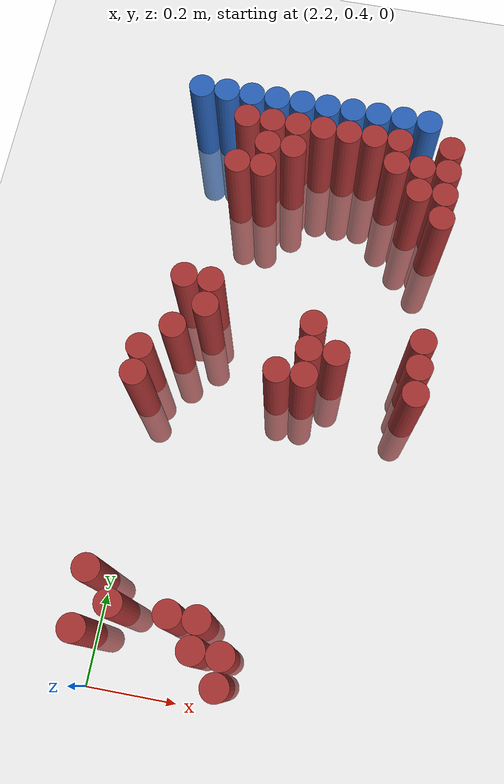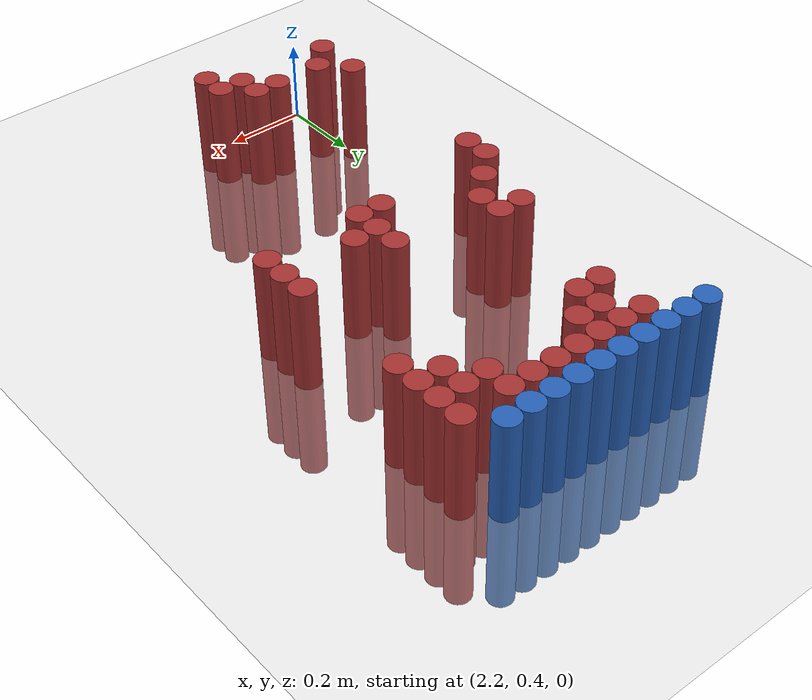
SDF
<sdf version="1.6">
 <world name="default">
  <model name="ground_plane">
   <static>1</static>
   <link name="link">
    <collision name="collision">
     <geometry><plane><normal>0 0 1</normal><size>100 100</size></plane></geometry>
     <surface><friction><ode><mu>100</mu><mu2>50</mu2></ode></friction></surface>
    </collision>
    <visual name="visual">
     <cast_shadows>0</cast_shadows>
     <geometry><plane><normal>0 0 1</normal><size>100 100</size></plane></geometry>
     <material>
      <script><uri>file://media/materials/scripts/gazebo.material</uri><name>Gazebo/Grey</name></script>
     </material>
    </visual>
   </link>
  </model>
  <model name="unit_cylinder_97">
   <static>1</static>
   <pose>2.190000 1.770000 0.000000 0.000000 0.000000 0.000000</pose>
   <link name="link">
    <inertial>
     <mass>1</mass>
     <inertia><ixx>0.145833</ixx><ixy>0</ixy><ixz>0</ixz><iyy>0.145833</iyy><iyz>0</iyz><izz>0.125</izz></inertia>
    </inertial>
    <collision name="collision">
     <geometry><cylinder><radius>0.030000</radius><length>0.5</length></cylinder></geometry>
    </collision>
    <visual name="visual">
     <geometry><cylinder><radius>0.030000</radius><length>0.5</length></cylinder></geometry>
     <material>
      <ambient>0.152000 0.379000 0.720000 1</ambient>
      <diffuse>0.152000 0.379000 0.720000 1</diffuse>
     </material>
     <material>
      <script><name>Gazebo/Grey</name><uri>file://media/materials/scripts/gazebo.material</uri></script>
     </material>
    </visual>
   </link>
  </model>
  <model name="unit_cylinder_98">
   <static>1</static>
   <pose>2.250000 1.770000 0.000000 0.000000 0.000000 0.000000</pose>
   <link name="link">
    <inertial>
     <mass>1</mass>
     <inertia><ixx>0.145833</ixx><ixy>0</ixy><ixz>0</ixz><iyy>0.145833</iyy><iyz>0</iyz><izz>0.125</izz></inertia>
    </inertial>
    <collision name="collision">
     <geometry><cylinder><radius>0.030000</radius><length>0.5</length></cylinder></geometry>
    </collision>
    <visual name="visual">
     <geometry><cylinder><radius>0.030000</radius><length>0.5</length></cylinder></geometry>
     <material>
      <ambient>0.152000 0.379000 0.720000 1</ambient>
      <diffuse>0.152000 0.379000 0.720000 1</diffuse>
     </material>
     <material>
      <script><name>Gazebo/Grey</name><uri>file://media/materials/scripts/gazebo.material</uri></script>
     </material>
    </visual>
   </link>
  </model>
  <model name="unit_cylinder_99">
   <static>1</static>
   <pose>2.310000 1.770000 0.000000 0.000000 0.000000 0.000000</pose>
   <link name="link">
    <inertial>
     <mass>1</mass>
     <inertia><ixx>0.145833</ixx><ixy>0</ixy><ixz>0</ixz><iyy>0.145833</iyy><iyz>0</iyz><izz>0.125</izz></inertia>
    </inertial>
    <collision name="collision">
     <geometry><cylinder><radius>0.030000</radius><length>0.5</length></cylinder></geometry>
    </collision>
    <visual name="visual">
     <geometry><cylinder><radius>0.030000</radius><length>0.5</length></cylinder></geometry>
     <material>
      <ambient>0.152000 0.379000 0.720000 1</ambient>
      <diffuse>0.152000 0.379000 0.720000 1</diffuse>
     </material>
     <material>
      <script><name>Gazebo/Grey</name><uri>file://media/materials/scripts/gazebo.material</uri></script>
     </material>
    </visual>
   </link>
  </model>
  <model name="unit_cylinder_100">
   <static>1</static>
   <pose>2.370000 1.770000 0.000000 0.000000 0.000000 0.000000</pose>
   <link name="link">
    <inertial>
     <mass>1</mass>
     <inertia><ixx>0.145833</ixx><ixy>0</ixy><ixz>0</ixz><iyy>0.145833</iyy><iyz>0</iyz><izz>0.125</izz></inertia>
    </inertial>
    <collision name="collision">
     <geometry><cylinder><radius>0.030000</radius><length>0.5</length></cylinder></geometry>
    </collision>
    <visual name="visual">
     <geometry><cylinder><radius>0.030000</radius><length>0.5</length></cylinder></geometry>
     <material>
      <ambient>0.152000 0.379000 0.720000 1</ambient>
      <diffuse>0.152000 0.379000 0.720000 1</diffuse>
     </material>
     <material>
      <script><name>Gazebo/Grey</name><uri>file://media/materials/scripts/gazebo.material</uri></script>
     </material>
    </visual>
   </link>
  </model>
  <model name="unit_cylinder_101">
   <static>1</static>
   <pose>2.430000 1.770000 0.000000 0.000000 0.000000 0.000000</pose>
   <link name="link">
    <inertial>
     <mass>1</mass>
     <inertia><ixx>0.145833</ixx><ixy>0</ixy><ixz>0</ixz><iyy>0.145833</iyy><iyz>0</iyz><izz>0.125</izz></inertia>
    </inertial>
    <collision name="collision">
     <geometry><cylinder><radius>0.030000</radius><length>0.5</length></cylinder></geometry>
    </collision>
    <visual name="visual">
     <geometry><cylinder><radius>0.030000</radius><length>0.5</length></cylinder></geometry>
     <material>
      <ambient>0.152000 0.379000 0.720000 1</ambient>
      <diffuse>0.152000 0.379000 0.720000 1</diffuse>
     </material>
     <material>
      <script><name>Gazebo/Grey</name><uri>file://media/materials/scripts/gazebo.material</uri></script>
     </material>
    </visual>
   </link>
  </model>
  <model name="unit_cylinder_102">
   <static>1</static>
   <pose>2.490000 1.770000 0.000000 0.000000 0.000000 0.000000</pose>
   <link name="link">
    <inertial>
     <mass>1</mass>
     <inertia><ixx>0.145833</ixx><ixy>0</ixy><ixz>0</ixz><iyy>0.145833</iyy><iyz>0</iyz><izz>0.125</izz></inertia>
    </inertial>
    <collision name="collision">
     <geometry><cylinder><radius>0.030000</radius><length>0.5</length></cylinder></geometry>
    </collision>
    <visual name="visual">
     <geometry><cylinder><radius>0.030000</radius><length>0.5</length></cylinder></geometry>
     <material>
      <ambient>0.152000 0.379000 0.720000 1</ambient>
      <diffuse>0.152000 0.379000 0.720000 1</diffuse>
     </material>
     <material>
      <script><name>Gazebo/Grey</name><uri>file://media/materials/scripts/gazebo.material</uri></script>
     </material>
    </visual>
   </link>
  </model>
  <model name="unit_cylinder_103">
   <static>1</static>
   <pose>2.550000 1.770000 0.000000 0.000000 0.000000 0.000000</pose>
   <link name="link">
    <inertial>
     <mass>1</mass>
     <inertia><ixx>0.145833</ixx><ixy>0</ixy><ixz>0</ixz><iyy>0.145833</iyy><iyz>0</iyz><izz>0.125</izz></inertia>
    </inertial>
    <collision name="collision">
     <geometry><cylinder><radius>0.030000</radius><length>0.5</length></cylinder></geometry>
    </collision>
    <visual name="visual">
     <geometry><cylinder><radius>0.030000</radius><length>0.5</length></cylinder></geometry>
     <material>
      <ambient>0.152000 0.379000 0.720000 1</ambient>
      <diffuse>0.152000 0.379000 0.720000 1</diffuse>
     </material>
     <material>
      <script><name>Gazebo/Grey</name><uri>file://media/materials/scripts/gazebo.material</uri></script>
     </material>
    </visual>
   </link>
  </model>
  <model name="unit_cylinder_104">
   <static>1</static>
   <pose>2.610000 1.770000 0.000000 0.000000 0.000000 0.000000</pose>
   <link name="link">
    <inertial>
     <mass>1</mass>
     <inertia><ixx>0.145833</ixx><ixy>0</ixy><ixz>0</ixz><iyy>0.145833</iyy><iyz>0</iyz><izz>0.125</izz></inertia>
    </inertial>
    <collision name="collision">
     <geometry><cylinder><radius>0.030000</radius><length>0.5</length></cylinder></geometry>
    </collision>
    <visual name="visual">
     <geometry><cylinder><radius>0.030000</radius><length>0.5</length></cylinder></geometry>
     <material>
      <ambient>0.152000 0.379000 0.720000 1</ambient>
      <diffuse>0.152000 0.379000 0.720000 1</diffuse>
     </material>
     <material>
      <script><name>Gazebo/Grey</name><uri>file://media/materials/scripts/gazebo.material</uri></script>
     </material>
    </visual>
   </link>
  </model>
  <model name="unit_cylinder_105">
   <static>1</static>
   <pose>2.670000 1.770000 0.000000 0.000000 0.000000 0.000000</pose>
   <link name="link">
    <inertial>
     <mass>1</mass>
     <inertia><ixx>0.145833</ixx><ixy>0</ixy><ixz>0</ixz><iyy>0.145833</iyy><iyz>0</iyz><izz>0.125</izz></inertia>
    </inertial>
    <collision name="collision">
     <geometry><cylinder><radius>0.030000</radius><length>0.5</length></cylinder></geometry>
    </collision>
    <visual name="visual">
     <geometry><cylinder><radius>0.030000</radius><length>0.5</length></cylinder></geometry>
     <material>
      <ambient>0.152000 0.379000 0.720000 1</ambient>
      <diffuse>0.152000 0.379000 0.720000 1</diffuse>
     </material>
     <material>
      <script><name>Gazebo/Grey</name><uri>file://media/materials/scripts/gazebo.material</uri></script>
     </material>
    </visual>
   </link>
  </model>
  <model name="unit_cylinder_106">
   <static>1</static>
   <pose>2.730000 1.770000 0.000000 0.000000 0.000000 0.000000</pose>
   <link name="link">
    <inertial>
     <mass>1</mass>
     <inertia><ixx>0.145833</ixx><ixy>0</ixy><ixz>0</ixz><iyy>0.145833</iyy><iyz>0</iyz><izz>0.125</izz></inertia>
    </inertial>
    <collision name="collision">
     <geometry><cylinder><radius>0.030000</radius><length>0.5</length></cylinder></geometry>
    </collision>
    <visual name="visual">
     <geometry><cylinder><radius>0.030000</radius><length>0.5</length></cylinder></geometry>
     <material>
      <ambient>0.152000 0.379000 0.720000 1</ambient>
      <diffuse>0.152000 0.379000 0.720000 1</diffuse>
     </material>
     <material>
      <script><name>Gazebo/Grey</name><uri>file://media/materials/scripts/gazebo.material</uri></script>
     </material>
    </visual>
   </link>
  </model>
  <model name="unit_cylinder_125">
   <static>1</static>
   <pose>2.310000 1.710000 0.000000 0.000000 0.000000 0.000000</pose>
   <link name="link">
    <inertial>
     <mass>1</mass>
     <inertia><ixx>0.145833</ixx><ixy>0</ixy><ixz>0</ixz><iyy>0.145833</iyy><iyz>0</iyz><izz>0.125</izz></inertia>
    </inertial>
    <collision name="collision">
     <geometry><cylinder><radius>0.030000</radius><length>0.5</length></cylinder></geometry>
    </collision>
    <visual name="visual">
     <geometry><cylinder><radius>0.030000</radius><length>0.5</length></cylinder></geometry>
     <material>
      <ambient>0.648000 0.192000 0.192000 1</ambient>
      <diffuse>0.648000 0.192000 0.192000 1</diffuse>
     </material>
     <material>
      <script><name>Gazebo/Grey</name><uri>file://media/materials/scripts/gazebo.material</uri></script>
     </material>
    </visual>
   </link>
  </model>
  <model name="unit_cylinder_126">
   <static>1</static>
   <pose>2.370000 1.710000 0.000000 0.000000 0.000000 0.000000</pose>
   <link name="link">
    <inertial>
     <mass>1</mass>
     <inertia><ixx>0.145833</ixx><ixy>0</ixy><ixz>0</ixz><iyy>0.145833</iyy><iyz>0</iyz><izz>0.125</izz></inertia>
    </inertial>
    <collision name="collision">
     <geometry><cylinder><radius>0.030000</radius><length>0.5</length></cylinder></geometry>
    </collision>
    <visual name="visual">
     <geometry><cylinder><radius>0.030000</radius><length>0.5</length></cylinder></geometry>
     <material>
      <ambient>0.648000 0.192000 0.192000 1</ambient>
      <diffuse>0.648000 0.192000 0.192000 1</diffuse>
     </material>
     <material>
      <script><name>Gazebo/Grey</name><uri>file://media/materials/scripts/gazebo.material</uri></script>
     </material>
    </visual>
   </link>
  </model>
  <model name="unit_cylinder_127">
   <static>1</static>
   <pose>2.430000 1.710000 0.000000 0.000000 0.000000 0.000000</pose>
   <link name="link">
    <inertial>
     <mass>1</mass>
     <inertia><ixx>0.145833</ixx><ixy>0</ixy><ixz>0</ixz><iyy>0.145833</iyy><iyz>0</iyz><izz>0.125</izz></inertia>
    </inertial>
    <collision name="collision">
     <geometry><cylinder><radius>0.030000</radius><length>0.5</length></cylinder></geometry>
    </collision>
    <visual name="visual">
     <geometry><cylinder><radius>0.030000</radius><length>0.5</length></cylinder></geometry>
     <material>
      <ambient>0.648000 0.192000 0.192000 1</ambient>
      <diffuse>0.648000 0.192000 0.192000 1</diffuse>
     </material>
     <material>
      <script><name>Gazebo/Grey</name><uri>file://media/materials/scripts/gazebo.material</uri></script>
     </material>
    </visual>
   </link>
  </model>
  <model name="unit_cylinder_128">
   <static>1</static>
   <pose>2.490000 1.710000 0.000000 0.000000 0.000000 0.000000</pose>
   <link name="link">
    <inertial>
     <mass>1</mass>
     <inertia><ixx>0.145833</ixx><ixy>0</ixy><ixz>0</ixz><iyy>0.145833</iyy><iyz>0</iyz><izz>0.125</izz></inertia>
    </inertial>
    <collision name="collision">
     <geometry><cylinder><radius>0.030000</radius><length>0.5</length></cylinder></geometry>
    </collision>
    <visual name="visual">
     <geometry><cylinder><radius>0.030000</radius><length>0.5</length></cylinder></geometry>
     <material>
      <ambient>0.648000 0.192000 0.192000 1</ambient>
      <diffuse>0.648000 0.192000 0.192000 1</diffuse>
     </material>
     <material>
      <script><name>Gazebo/Grey</name><uri>file://media/materials/scripts/gazebo.material</uri></script>
     </material>
    </visual>
   </link>
  </model>
  <model name="unit_cylinder_129">
   <static>1</static>
   <pose>2.550000 1.710000 0.000000 0.000000 0.000000 0.000000</pose>
   <link name="link">
    <inertial>
     <mass>1</mass>
     <inertia><ixx>0.145833</ixx><ixy>0</ixy><ixz>0</ixz><iyy>0.145833</iyy><iyz>0</iyz><izz>0.125</izz></inertia>
    </inertial>
    <collision name="collision">
     <geometry><cylinder><radius>0.030000</radius><length>0.5</length></cylinder></geometry>
    </collision>
    <visual name="visual">
     <geometry><cylinder><radius>0.030000</radius><length>0.5</length></cylinder></geometry>
     <material>
      <ambient>0.648000 0.192000 0.192000 1</ambient>
      <diffuse>0.648000 0.192000 0.192000 1</diffuse>
     </material>
     <material>
      <script><name>Gazebo/Grey</name><uri>file://media/materials/scripts/gazebo.material</uri></script>
     </material>
    </visual>
   </link>
  </model>
  <model name="unit_cylinder_130">
   <static>1</static>
   <pose>2.610000 1.710000 0.000000 0.000000 0.000000 0.000000</pose>
   <link name="link">
    <inertial>
     <mass>1</mass>
     <inertia><ixx>0.145833</ixx><ixy>0</ixy><ixz>0</ixz><iyy>0.145833</iyy><iyz>0</iyz><izz>0.125</izz></inertia>
    </inertial>
    <collision name="collision">
     <geometry><cylinder><radius>0.030000</radius><length>0.5</length></cylinder></geometry>
    </collision>
    <visual name="visual">
     <geometry><cylinder><radius>0.030000</radius><length>0.5</length></cylinder></geometry>
     <material>
      <ambient>0.648000 0.192000 0.192000 1</ambient>
      <diffuse>0.648000 0.192000 0.192000 1</diffuse>
     </material>
     <material>
      <script><name>Gazebo/Grey</name><uri>file://media/materials/scripts/gazebo.material</uri></script>
     </material>
    </visual>
   </link>
  </model>
  <model name="unit_cylinder_131">
   <static>1</static>
   <pose>2.670000 1.710000 0.000000 0.000000 0.000000 0.000000</pose>
   <link name="link">
    <inertial>
     <mass>1</mass>
     <inertia><ixx>0.145833</ixx><ixy>0</ixy><ixz>0</ixz><iyy>0.145833</iyy><iyz>0</iyz><izz>0.125</izz></inertia>
    </inertial>
    <collision name="collision">
     <geometry><cylinder><radius>0.030000</radius><length>0.5</length></cylinder></geometry>
    </collision>
    <visual name="visual">
     <geometry><cylinder><radius>0.030000</radius><length>0.5</length></cylinder></geometry>
     <material>
      <ambient>0.648000 0.192000 0.192000 1</ambient>
      <diffuse>0.648000 0.192000 0.192000 1</diffuse>
     </material>
     <material>
      <script><name>Gazebo/Grey</name><uri>file://media/materials/scripts/gazebo.material</uri></script>
     </material>
    </visual>
   </link>
  </model>
  <model name="unit_cylinder_132">
   <static>1</static>
   <pose>2.790000 1.710000 0.000000 0.000000 0.000000 0.000000</pose>
   <link name="link">
    <inertial>
     <mass>1</mass>
     <inertia><ixx>0.145833</ixx><ixy>0</ixy><ixz>0</ixz><iyy>0.145833</iyy><iyz>0</iyz><izz>0.125</izz></inertia>
    </inertial>
    <collision name="collision">
     <geometry><cylinder><radius>0.030000</radius><length>0.5</length></cylinder></geometry>
    </collision>
    <visual name="visual">
     <geometry><cylinder><radius>0.030000</radius><length>0.5</length></cylinder></geometry>
     <material>
      <ambient>0.648000 0.192000 0.192000 1</ambient>
      <diffuse>0.648000 0.192000 0.192000 1</diffuse>
     </material>
     <material>
      <script><name>Gazebo/Grey</name><uri>file://media/materials/scripts/gazebo.material</uri></script>
     </material>
    </visual>
   </link>
  </model>
  <model name="unit_cylinder_141">
   <static>1</static>
   <pose>2.370000 1.650000 0.000000 0.000000 0.000000 0.000000</pose>
   <link name="link">
    <inertial>
     <mass>1</mass>
     <inertia><ixx>0.145833</ixx><ixy>0</ixy><ixz>0</ixz><iyy>0.145833</iyy><iyz>0</iyz><izz>0.125</izz></inertia>
    </inertial>
    <collision name="collision">
     <geometry><cylinder><radius>0.030000</radius><length>0.5</length></cylinder></geometry>
    </collision>
    <visual name="visual">
     <geometry><cylinder><radius>0.030000</radius><length>0.5</length></cylinder></geometry>
     <material>
      <ambient>0.648000 0.192000 0.192000 1</ambient>
      <diffuse>0.648000 0.192000 0.192000 1</diffuse>
     </material>
     <material>
      <script><name>Gazebo/Grey</name><uri>file://media/materials/scripts/gazebo.material</uri></script>
     </material>
    </visual>
   </link>
  </model>
  <model name="unit_cylinder_142">
   <static>1</static>
   <pose>2.430000 1.650000 0.000000 0.000000 0.000000 0.000000</pose>
   <link name="link">
    <inertial>
     <mass>1</mass>
     <inertia><ixx>0.145833</ixx><ixy>0</ixy><ixz>0</ixz><iyy>0.145833</iyy><iyz>0</iyz><izz>0.125</izz></inertia>
    </inertial>
    <collision name="collision">
     <geometry><cylinder><radius>0.030000</radius><length>0.5</length></cylinder></geometry>
    </collision>
    <visual name="visual">
     <geometry><cylinder><radius>0.030000</radius><length>0.5</length></cylinder></geometry>
     <material>
      <ambient>0.648000 0.192000 0.192000 1</ambient>
      <diffuse>0.648000 0.192000 0.192000 1</diffuse>
     </material>
     <material>
      <script><name>Gazebo/Grey</name><uri>file://media/materials/scripts/gazebo.material</uri></script>
     </material>
    </visual>
   </link>
  </model>
  <model name="unit_cylinder_143">
   <static>1</static>
   <pose>2.670000 1.650000 0.000000 0.000000 0.000000 0.000000</pose>
   <link name="link">
    <inertial>
     <mass>1</mass>
     <inertia><ixx>0.145833</ixx><ixy>0</ixy><ixz>0</ixz><iyy>0.145833</iyy><iyz>0</iyz><izz>0.125</izz></inertia>
    </inertial>
    <collision name="collision">
     <geometry><cylinder><radius>0.030000</radius><length>0.5</length></cylinder></geometry>
    </collision>
    <visual name="visual">
     <geometry><cylinder><radius>0.030000</radius><length>0.5</length></cylinder></geometry>
     <material>
      <ambient>0.648000 0.192000 0.192000 1</ambient>
      <diffuse>0.648000 0.192000 0.192000 1</diffuse>
     </material>
     <material>
      <script><name>Gazebo/Grey</name><uri>file://media/materials/scripts/gazebo.material</uri></script>
     </material>
    </visual>
   </link>
  </model>
  <model name="unit_cylinder_144">
   <static>1</static>
   <pose>2.730000 1.650000 0.000000 0.000000 0.000000 0.000000</pose>
   <link name="link">
    <inertial>
     <mass>1</mass>
     <inertia><ixx>0.145833</ixx><ixy>0</ixy><ixz>0</ixz><iyy>0.145833</iyy><iyz>0</iyz><izz>0.125</izz></inertia>
    </inertial>
    <collision name="collision">
     <geometry><cylinder><radius>0.030000</radius><length>0.5</length></cylinder></geometry>
    </collision>
    <visual name="visual">
     <geometry><cylinder><radius>0.030000</radius><length>0.5</length></cylinder></geometry>
     <material>
      <ambient>0.648000 0.192000 0.192000 1</ambient>
      <diffuse>0.648000 0.192000 0.192000 1</diffuse>
     </material>
     <material>
      <script><name>Gazebo/Grey</name><uri>file://media/materials/scripts/gazebo.material</uri></script>
     </material>
    </visual>
   </link>
  </model>
  <model name="unit_cylinder_145">
   <static>1</static>
   <pose>2.790000 1.650000 0.000000 0.000000 0.000000 0.000000</pose>
   <link name="link">
    <inertial>
     <mass>1</mass>
     <inertia><ixx>0.145833</ixx><ixy>0</ixy><ixz>0</ixz><iyy>0.145833</iyy><iyz>0</iyz><izz>0.125</izz></inertia>
    </inertial>
    <collision name="collision">
     <geometry><cylinder><radius>0.030000</radius><length>0.5</length></cylinder></geometry>
    </collision>
    <visual name="visual">
     <geometry><cylinder><radius>0.030000</radius><length>0.5</length></cylinder></geometry>
     <material>
      <ambient>0.648000 0.192000 0.192000 1</ambient>
      <diffuse>0.648000 0.192000 0.192000 1</diffuse>
     </material>
     <material>
      <script><name>Gazebo/Grey</name><uri>file://media/materials/scripts/gazebo.material</uri></script>
     </material>
    </visual>
   </link>
  </model>
  <model name="unit_cylinder_149">
   <static>1</static>
   <pose>2.310000 1.590000 0.000000 0.000000 0.000000 0.000000</pose>
   <link name="link">
    <inertial>
     <mass>1</mass>
     <inertia><ixx>0.145833</ixx><ixy>0</ixy><ixz>0</ixz><iyy>0.145833</iyy><iyz>0</iyz><izz>0.125</izz></inertia>
    </inertial>
    <collision name="collision">
     <geometry><cylinder><radius>0.030000</radius><length>0.5</length></cylinder></geometry>
    </collision>
    <visual name="visual">
     <geometry><cylinder><radius>0.030000</radius><length>0.5</length></cylinder></geometry>
     <material>
      <ambient>0.648000 0.192000 0.192000 1</ambient>
      <diffuse>0.648000 0.192000 0.192000 1</diffuse>
     </material>
     <material>
      <script><name>Gazebo/Grey</name><uri>file://media/materials/scripts/gazebo.material</uri></script>
     </material>
    </visual>
   </link>
  </model>
  <model name="unit_cylinder_150">
   <static>1</static>
   <pose>2.370000 1.590000 0.000000 0.000000 0.000000 0.000000</pose>
   <link name="link">
    <inertial>
     <mass>1</mass>
     <inertia><ixx>0.145833</ixx><ixy>0</ixy><ixz>0</ixz><iyy>0.145833</iyy><iyz>0</iyz><izz>0.125</izz></inertia>
    </inertial>
    <collision name="collision">
     <geometry><cylinder><radius>0.030000</radius><length>0.5</length></cylinder></geometry>
    </collision>
    <visual name="visual">
     <geometry><cylinder><radius>0.030000</radius><length>0.5</length></cylinder></geometry>
     <material>
      <ambient>0.648000 0.192000 0.192000 1</ambient>
      <diffuse>0.648000 0.192000 0.192000 1</diffuse>
     </material>
     <material>
      <script><name>Gazebo/Grey</name><uri>file://media/materials/scripts/gazebo.material</uri></script>
     </material>
    </visual>
   </link>
  </model>
  <model name="unit_cylinder_151">
   <static>1</static>
   <pose>2.730000 1.590000 0.000000 0.000000 0.000000 0.000000</pose>
   <link name="link">
    <inertial>
     <mass>1</mass>
     <inertia><ixx>0.145833</ixx><ixy>0</ixy><ixz>0</ixz><iyy>0.145833</iyy><iyz>0</iyz><izz>0.125</izz></inertia>
    </inertial>
    <collision name="collision">
     <geometry><cylinder><radius>0.030000</radius><length>0.5</length></cylinder></geometry>
    </collision>
    <visual name="visual">
     <geometry><cylinder><radius>0.030000</radius><length>0.5</length></cylinder></geometry>
     <material>
      <ambient>0.648000 0.192000 0.192000 1</ambient>
      <diffuse>0.648000 0.192000 0.192000 1</diffuse>
     </material>
     <material>
      <script><name>Gazebo/Grey</name><uri>file://media/materials/scripts/gazebo.material</uri></script>
     </material>
    </visual>
   </link>
  </model>
  <model name="unit_cylinder_152">
   <static>1</static>
   <pose>2.790000 1.590000 0.000000 0.000000 0.000000 0.000000</pose>
   <link name="link">
    <inertial>
     <mass>1</mass>
     <inertia><ixx>0.145833</ixx><ixy>0</ixy><ixz>0</ixz><iyy>0.145833</iyy><iyz>0</iyz><izz>0.125</izz></inertia>
    </inertial>
    <collision name="collision">
     <geometry><cylinder><radius>0.030000</radius><length>0.5</length></cylinder></geometry>
    </collision>
    <visual name="visual">
     <geometry><cylinder><radius>0.030000</radius><length>0.5</length></cylinder></geometry>
     <material>
      <ambient>0.648000 0.192000 0.192000 1</ambient>
      <diffuse>0.648000 0.192000 0.192000 1</diffuse>
     </material>
     <material>
      <script><name>Gazebo/Grey</name><uri>file://media/materials/scripts/gazebo.material</uri></script>
     </material>
    </visual>
   </link>
  </model>
  <model name="unit_cylinder_157">
   <static>1</static>
   <pose>2.790000 1.530000 0.000000 0.000000 0.000000 0.000000</pose>
   <link name="link">
    <inertial>
     <mass>1</mass>
     <inertia><ixx>0.145833</ixx><ixy>0</ixy><ixz>0</ixz><iyy>0.145833</iyy><iyz>0</iyz><izz>0.125</izz></inertia>
    </inertial>
    <collision name="collision">
     <geometry><cylinder><radius>0.030000</radius><length>0.5</length></cylinder></geometry>
    </collision>
    <visual name="visual">
     <geometry><cylinder><radius>0.030000</radius><length>0.5</length></cylinder></geometry>
     <material>
      <ambient>0.648000 0.192000 0.192000 1</ambient>
      <diffuse>0.648000 0.192000 0.192000 1</diffuse>
     </material>
     <material>
      <script><name>Gazebo/Grey</name><uri>file://media/materials/scripts/gazebo.material</uri></script>
     </material>
    </visual>
   </link>
  </model>
  <model name="unit_cylinder_161">
   <static>1</static>
   <pose>2.250000 1.290000 0.000000 0.000000 0.000000 0.000000</pose>
   <link name="link">
    <inertial>
     <mass>1</mass>
     <inertia><ixx>0.145833</ixx><ixy>0</ixy><ixz>0</ixz><iyy>0.145833</iyy><iyz>0</iyz><izz>0.125</izz></inertia>
    </inertial>
    <collision name="collision">
     <geometry><cylinder><radius>0.030000</radius><length>0.5</length></cylinder></geometry>
    </collision>
    <visual name="visual">
     <geometry><cylinder><radius>0.030000</radius><length>0.5</length></cylinder></geometry>
     <material>
      <ambient>0.648000 0.192000 0.192000 1</ambient>
      <diffuse>0.648000 0.192000 0.192000 1</diffuse>
     </material>
     <material>
      <script><name>Gazebo/Grey</name><uri>file://media/materials/scripts/gazebo.material</uri></script>
     </material>
    </visual>
   </link>
  </model>
  <model name="unit_cylinder_162">
   <static>1</static>
   <pose>2.310000 1.290000 0.000000 0.000000 0.000000 0.000000</pose>
   <link name="link">
    <inertial>
     <mass>1</mass>
     <inertia><ixx>0.145833</ixx><ixy>0</ixy><ixz>0</ixz><iyy>0.145833</iyy><iyz>0</iyz><izz>0.125</izz></inertia>
    </inertial>
    <collision name="collision">
     <geometry><cylinder><radius>0.030000</radius><length>0.5</length></cylinder></geometry>
    </collision>
    <visual name="visual">
     <geometry><cylinder><radius>0.030000</radius><length>0.5</length></cylinder></geometry>
     <material>
      <ambient>0.648000 0.192000 0.192000 1</ambient>
      <diffuse>0.648000 0.192000 0.192000 1</diffuse>
     </material>
     <material>
      <script><name>Gazebo/Grey</name><uri>file://media/materials/scripts/gazebo.material</uri></script>
     </material>
    </visual>
   </link>
  </model>
  <model name="unit_cylinder_167">
   <static>1</static>
   <pose>2.310000 1.230000 0.000000 0.000000 0.000000 0.000000</pose>
   <link name="link">
    <inertial>
     <mass>1</mass>
     <inertia><ixx>0.145833</ixx><ixy>0</ixy><ixz>0</ixz><iyy>0.145833</iyy><iyz>0</iyz><izz>0.125</izz></inertia>
    </inertial>
    <collision name="collision">
     <geometry><cylinder><radius>0.030000</radius><length>0.5</length></cylinder></geometry>
    </collision>
    <visual name="visual">
     <geometry><cylinder><radius>0.030000</radius><length>0.5</length></cylinder></geometry>
     <material>
      <ambient>0.648000 0.192000 0.192000 1</ambient>
      <diffuse>0.648000 0.192000 0.192000 1</diffuse>
     </material>
     <material>
      <script><name>Gazebo/Grey</name><uri>file://media/materials/scripts/gazebo.material</uri></script>
     </material>
    </visual>
   </link>
  </model>
  <model name="unit_cylinder_168">
   <static>1</static>
   <pose>2.550000 1.230000 0.000000 0.000000 0.000000 0.000000</pose>
   <link name="link">
    <inertial>
     <mass>1</mass>
     <inertia><ixx>0.145833</ixx><ixy>0</ixy><ixz>0</ixz><iyy>0.145833</iyy><iyz>0</iyz><izz>0.125</izz></inertia>
    </inertial>
    <collision name="collision">
     <geometry><cylinder><radius>0.030000</radius><length>0.5</length></cylinder></geometry>
    </collision>
    <visual name="visual">
     <geometry><cylinder><radius>0.030000</radius><length>0.5</length></cylinder></geometry>
     <material>
      <ambient>0.648000 0.192000 0.192000 1</ambient>
      <diffuse>0.648000 0.192000 0.192000 1</diffuse>
     </material>
     <material>
      <script><name>Gazebo/Grey</name><uri>file://media/materials/scripts/gazebo.material</uri></script>
     </material>
    </visual>
   </link>
  </model>
  <model name="unit_cylinder_169">
   <static>1</static>
   <pose>2.790000 1.230000 0.000000 0.000000 0.000000 0.000000</pose>
   <link name="link">
    <inertial>
     <mass>1</mass>
     <inertia><ixx>0.145833</ixx><ixy>0</ixy><ixz>0</ixz><iyy>0.145833</iyy><iyz>0</iyz><izz>0.125</izz></inertia>
    </inertial>
    <collision name="collision">
     <geometry><cylinder><radius>0.030000</radius><length>0.5</length></cylinder></geometry>
    </collision>
    <visual name="visual">
     <geometry><cylinder><radius>0.030000</radius><length>0.5</length></cylinder></geometry>
     <material>
      <ambient>0.648000 0.192000 0.192000 1</ambient>
      <diffuse>0.648000 0.192000 0.192000 1</diffuse>
     </material>
     <material>
      <script><name>Gazebo/Grey</name><uri>file://media/materials/scripts/gazebo.material</uri></script>
     </material>
    </visual>
   </link>
  </model>
  <model name="unit_cylinder_173">
   <static>1</static>
   <pose>2.250000 1.170000 0.000000 0.000000 0.000000 0.000000</pose>
   <link name="link">
    <inertial>
     <mass>1</mass>
     <inertia><ixx>0.145833</ixx><ixy>0</ixy><ixz>0</ixz><iyy>0.145833</iyy><iyz>0</iyz><izz>0.125</izz></inertia>
    </inertial>
    <collision name="collision">
     <geometry><cylinder><radius>0.030000</radius><length>0.5</length></cylinder></geometry>
    </collision>
    <visual name="visual">
     <geometry><cylinder><radius>0.030000</radius><length>0.5</length></cylinder></geometry>
     <material>
      <ambient>0.648000 0.192000 0.192000 1</ambient>
      <diffuse>0.648000 0.192000 0.192000 1</diffuse>
     </material>
     <material>
      <script><name>Gazebo/Grey</name><uri>file://media/materials/scripts/gazebo.material</uri></script>
     </material>
    </visual>
   </link>
  </model>
  <model name="unit_cylinder_174">
   <static>1</static>
   <pose>2.550000 1.170000 0.000000 0.000000 0.000000 0.000000</pose>
   <link name="link">
    <inertial>
     <mass>1</mass>
     <inertia><ixx>0.145833</ixx><ixy>0</ixy><ixz>0</ixz><iyy>0.145833</iyy><iyz>0</iyz><izz>0.125</izz></inertia>
    </inertial>
    <collision name="collision">
     <geometry><cylinder><radius>0.030000</radius><length>0.5</length></cylinder></geometry>
    </collision>
    <visual name="visual">
     <geometry><cylinder><radius>0.030000</radius><length>0.5</length></cylinder></geometry>
     <material>
      <ambient>0.648000 0.192000 0.192000 1</ambient>
      <diffuse>0.648000 0.192000 0.192000 1</diffuse>
     </material>
     <material>
      <script><name>Gazebo/Grey</name><uri>file://media/materials/scripts/gazebo.material</uri></script>
     </material>
    </visual>
   </link>
  </model>
  <model name="unit_cylinder_175">
   <static>1</static>
   <pose>2.610000 1.170000 0.000000 0.000000 0.000000 0.000000</pose>
   <link name="link">
    <inertial>
     <mass>1</mass>
     <inertia><ixx>0.145833</ixx><ixy>0</ixy><ixz>0</ixz><iyy>0.145833</iyy><iyz>0</iyz><izz>0.125</izz></inertia>
    </inertial>
    <collision name="collision">
     <geometry><cylinder><radius>0.030000</radius><length>0.5</length></cylinder></geometry>
    </collision>
    <visual name="visual">
     <geometry><cylinder><radius>0.030000</radius><length>0.5</length></cylinder></geometry>
     <material>
      <ambient>0.648000 0.192000 0.192000 1</ambient>
      <diffuse>0.648000 0.192000 0.192000 1</diffuse>
     </material>
     <material>
      <script><name>Gazebo/Grey</name><uri>file://media/materials/scripts/gazebo.material</uri></script>
     </material>
    </visual>
   </link>
  </model>
  <model name="unit_cylinder_176">
   <static>1</static>
   <pose>2.790000 1.170000 0.000000 0.000000 0.000000 0.000000</pose>
   <link name="link">
    <inertial>
     <mass>1</mass>
     <inertia><ixx>0.145833</ixx><ixy>0</ixy><ixz>0</ixz><iyy>0.145833</iyy><iyz>0</iyz><izz>0.125</izz></inertia>
    </inertial>
    <collision name="collision">
     <geometry><cylinder><radius>0.030000</radius><length>0.5</length></cylinder></geometry>
    </collision>
    <visual name="visual">
     <geometry><cylinder><radius>0.030000</radius><length>0.5</length></cylinder></geometry>
     <material>
      <ambient>0.648000 0.192000 0.192000 1</ambient>
      <diffuse>0.648000 0.192000 0.192000 1</diffuse>
     </material>
     <material>
      <script><name>Gazebo/Grey</name><uri>file://media/materials/scripts/gazebo.material</uri></script>
     </material>
    </visual>
   </link>
  </model>
  <model name="unit_cylinder_179">
   <static>1</static>
   <pose>2.190000 1.110000 0.000000 0.000000 0.000000 0.000000</pose>
   <link name="link">
    <inertial>
     <mass>1</mass>
     <inertia><ixx>0.145833</ixx><ixy>0</ixy><ixz>0</ixz><iyy>0.145833</iyy><iyz>0</iyz><izz>0.125</izz></inertia>
    </inertial>
    <collision name="collision">
     <geometry><cylinder><radius>0.030000</radius><length>0.5</length></cylinder></geometry>
    </collision>
    <visual name="visual">
     <geometry><cylinder><radius>0.030000</radius><length>0.5</length></cylinder></geometry>
     <material>
      <ambient>0.648000 0.192000 0.192000 1</ambient>
      <diffuse>0.648000 0.192000 0.192000 1</diffuse>
     </material>
     <material>
      <script><name>Gazebo/Grey</name><uri>file://media/materials/scripts/gazebo.material</uri></script>
     </material>
    </visual>
   </link>
  </model>
  <model name="unit_cylinder_180">
   <static>1</static>
   <pose>2.490000 1.110000 0.000000 0.000000 0.000000 0.000000</pose>
   <link name="link">
    <inertial>
     <mass>1</mass>
     <inertia><ixx>0.145833</ixx><ixy>0</ixy><ixz>0</ixz><iyy>0.145833</iyy><iyz>0</iyz><izz>0.125</izz></inertia>
    </inertial>
    <collision name="collision">
     <geometry><cylinder><radius>0.030000</radius><length>0.5</length></cylinder></geometry>
    </collision>
    <visual name="visual">
     <geometry><cylinder><radius>0.030000</radius><length>0.5</length></cylinder></geometry>
     <material>
      <ambient>0.648000 0.192000 0.192000 1</ambient>
      <diffuse>0.648000 0.192000 0.192000 1</diffuse>
     </material>
     <material>
      <script><name>Gazebo/Grey</name><uri>file://media/materials/scripts/gazebo.material</uri></script>
     </material>
    </visual>
   </link>
  </model>
  <model name="unit_cylinder_181">
   <static>1</static>
   <pose>2.550000 1.110000 0.000000 0.000000 0.000000 0.000000</pose>
   <link name="link">
    <inertial>
     <mass>1</mass>
     <inertia><ixx>0.145833</ixx><ixy>0</ixy><ixz>0</ixz><iyy>0.145833</iyy><iyz>0</iyz><izz>0.125</izz></inertia>
    </inertial>
    <collision name="collision">
     <geometry><cylinder><radius>0.030000</radius><length>0.5</length></cylinder></geometry>
    </collision>
    <visual name="visual">
     <geometry><cylinder><radius>0.030000</radius><length>0.5</length></cylinder></geometry>
     <material>
      <ambient>0.648000 0.192000 0.192000 1</ambient>
      <diffuse>0.648000 0.192000 0.192000 1</diffuse>
     </material>
     <material>
      <script><name>Gazebo/Grey</name><uri>file://media/materials/scripts/gazebo.material</uri></script>
     </material>
    </visual>
   </link>
  </model>
  <model name="unit_cylinder_182">
   <static>1</static>
   <pose>2.790000 1.110000 0.000000 0.000000 0.000000 0.000000</pose>
   <link name="link">
    <inertial>
     <mass>1</mass>
     <inertia><ixx>0.145833</ixx><ixy>0</ixy><ixz>0</ixz><iyy>0.145833</iyy><iyz>0</iyz><izz>0.125</izz></inertia>
    </inertial>
    <collision name="collision">
     <geometry><cylinder><radius>0.030000</radius><length>0.5</length></cylinder></geometry>
    </collision>
    <visual name="visual">
     <geometry><cylinder><radius>0.030000</radius><length>0.5</length></cylinder></geometry>
     <material>
      <ambient>0.648000 0.192000 0.192000 1</ambient>
      <diffuse>0.648000 0.192000 0.192000 1</diffuse>
     </material>
     <material>
      <script><name>Gazebo/Grey</name><uri>file://media/materials/scripts/gazebo.material</uri></script>
     </material>
    </visual>
   </link>
  </model>
  <model name="unit_cylinder_187">
   <static>1</static>
   <pose>2.190000 1.050000 0.000000 0.000000 0.000000 0.000000</pose>
   <link name="link">
    <inertial>
     <mass>1</mass>
     <inertia><ixx>0.145833</ixx><ixy>0</ixy><ixz>0</ixz><iyy>0.145833</iyy><iyz>0</iyz><izz>0.125</izz></inertia>
    </inertial>
    <collision name="collision">
     <geometry><cylinder><radius>0.030000</radius><length>0.5</length></cylinder></geometry>
    </collision>
    <visual name="visual">
     <geometry><cylinder><radius>0.030000</radius><length>0.5</length></cylinder></geometry>
     <material>
      <ambient>0.648000 0.192000 0.192000 1</ambient>
      <diffuse>0.648000 0.192000 0.192000 1</diffuse>
     </material>
     <material>
      <script><name>Gazebo/Grey</name><uri>file://media/materials/scripts/gazebo.material</uri></script>
     </material>
    </visual>
   </link>
  </model>
  <model name="unit_cylinder_191">
   <static>1</static>
   <pose>2.190000 0.630000 0.000000 0.000000 0.000000 0.000000</pose>
   <link name="link">
    <inertial>
     <mass>1</mass>
     <inertia><ixx>0.145833</ixx><ixy>0</ixy><ixz>0</ixz><iyy>0.145833</iyy><iyz>0</iyz><izz>0.125</izz></inertia>
    </inertial>
    <collision name="collision">
     <geometry><cylinder><radius>0.030000</radius><length>0.5</length></cylinder></geometry>
    </collision>
    <visual name="visual">
     <geometry><cylinder><radius>0.030000</radius><length>0.5</length></cylinder></geometry>
     <material>
      <ambient>0.648000 0.192000 0.192000 1</ambient>
      <diffuse>0.648000 0.192000 0.192000 1</diffuse>
     </material>
     <material>
      <script><name>Gazebo/Grey</name><uri>file://media/materials/scripts/gazebo.material</uri></script>
     </material>
    </visual>
   </link>
  </model>
  <model name="unit_cylinder_193">
   <static>1</static>
   <pose>2.250000 0.570000 0.000000 0.000000 0.000000 0.000000</pose>
   <link name="link">
    <inertial>
     <mass>1</mass>
     <inertia><ixx>0.145833</ixx><ixy>0</ixy><ixz>0</ixz><iyy>0.145833</iyy><iyz>0</iyz><izz>0.125</izz></inertia>
    </inertial>
    <collision name="collision">
     <geometry><cylinder><radius>0.030000</radius><length>0.5</length></cylinder></geometry>
    </collision>
    <visual name="visual">
     <geometry><cylinder><radius>0.030000</radius><length>0.5</length></cylinder></geometry>
     <material>
      <ambient>0.648000 0.192000 0.192000 1</ambient>
      <diffuse>0.648000 0.192000 0.192000 1</diffuse>
     </material>
     <material>
      <script><name>Gazebo/Grey</name><uri>file://media/materials/scripts/gazebo.material</uri></script>
     </material>
    </visual>
   </link>
  </model>
  <model name="unit_cylinder_194">
   <static>1</static>
   <pose>2.370000 0.570000 0.000000 0.000000 0.000000 0.000000</pose>
   <link name="link">
    <inertial>
     <mass>1</mass>
     <inertia><ixx>0.145833</ixx><ixy>0</ixy><ixz>0</ixz><iyy>0.145833</iyy><iyz>0</iyz><izz>0.125</izz></inertia>
    </inertial>
    <collision name="collision">
     <geometry><cylinder><radius>0.030000</radius><length>0.5</length></cylinder></geometry>
    </collision>
    <visual name="visual">
     <geometry><cylinder><radius>0.030000</radius><length>0.5</length></cylinder></geometry>
     <material>
      <ambient>0.648000 0.192000 0.192000 1</ambient>
      <diffuse>0.648000 0.192000 0.192000 1</diffuse>
     </material>
     <material>
      <script><name>Gazebo/Grey</name><uri>file://media/materials/scripts/gazebo.material</uri></script>
     </material>
    </visual>
   </link>
  </model>
  <model name="unit_cylinder_195">
   <static>1</static>
   <pose>2.430000 0.570000 0.000000 0.000000 0.000000 0.000000</pose>
   <link name="link">
    <inertial>
     <mass>1</mass>
     <inertia><ixx>0.145833</ixx><ixy>0</ixy><ixz>0</ixz><iyy>0.145833</iyy><iyz>0</iyz><izz>0.125</izz></inertia>
    </inertial>
    <collision name="collision">
     <geometry><cylinder><radius>0.030000</radius><length>0.5</length></cylinder></geometry>
    </collision>
    <visual name="visual">
     <geometry><cylinder><radius>0.030000</radius><length>0.5</length></cylinder></geometry>
     <material>
      <ambient>0.648000 0.192000 0.192000 1</ambient>
      <diffuse>0.648000 0.192000 0.192000 1</diffuse>
     </material>
     <material>
      <script><name>Gazebo/Grey</name><uri>file://media/materials/scripts/gazebo.material</uri></script>
     </material>
    </visual>
   </link>
  </model>
  <model name="unit_cylinder_196">
   <static>1</static>
   <pose>2.190000 0.510000 0.000000 0.000000 0.000000 0.000000</pose>
   <link name="link">
    <inertial>
     <mass>1</mass>
     <inertia><ixx>0.145833</ixx><ixy>0</ixy><ixz>0</ixz><iyy>0.145833</iyy><iyz>0</iyz><izz>0.125</izz></inertia>
    </inertial>
    <collision name="collision">
     <geometry><cylinder><radius>0.030000</radius><length>0.5</length></cylinder></geometry>
    </collision>
    <visual name="visual">
     <geometry><cylinder><radius>0.030000</radius><length>0.5</length></cylinder></geometry>
     <material>
      <ambient>0.648000 0.192000 0.192000 1</ambient>
      <diffuse>0.648000 0.192000 0.192000 1</diffuse>
     </material>
     <material>
      <script><name>Gazebo/Grey</name><uri>file://media/materials/scripts/gazebo.material</uri></script>
     </material>
    </visual>
   </link>
  </model>
  <model name="unit_cylinder_197">
   <static>1</static>
   <pose>2.430000 0.510000 0.000000 0.000000 0.000000 0.000000</pose>
   <link name="link">
    <inertial>
     <mass>1</mass>
     <inertia><ixx>0.145833</ixx><ixy>0</ixy><ixz>0</ixz><iyy>0.145833</iyy><iyz>0</iyz><izz>0.125</izz></inertia>
    </inertial>
    <collision name="collision">
     <geometry><cylinder><radius>0.030000</radius><length>0.5</length></cylinder></geometry>
    </collision>
    <visual name="visual">
     <geometry><cylinder><radius>0.030000</radius><length>0.5</length></cylinder></geometry>
     <material>
      <ambient>0.648000 0.192000 0.192000 1</ambient>
      <diffuse>0.648000 0.192000 0.192000 1</diffuse>
     </material>
     <material>
      <script><name>Gazebo/Grey</name><uri>file://media/materials/scripts/gazebo.material</uri></script>
     </material>
    </visual>
   </link>
  </model>
  <model name="unit_cylinder_198">
   <static>1</static>
   <pose>2.490000 0.510000 0.000000 0.000000 0.000000 0.000000</pose>
   <link name="link">
    <inertial>
     <mass>1</mass>
     <inertia><ixx>0.145833</ixx><ixy>0</ixy><ixz>0</ixz><iyy>0.145833</iyy><iyz>0</iyz><izz>0.125</izz></inertia>
    </inertial>
    <collision name="collision">
     <geometry><cylinder><radius>0.030000</radius><length>0.5</length></cylinder></geometry>
    </collision>
    <visual name="visual">
     <geometry><cylinder><radius>0.030000</radius><length>0.5</length></cylinder></geometry>
     <material>
      <ambient>0.648000 0.192000 0.192000 1</ambient>
      <diffuse>0.648000 0.192000 0.192000 1</diffuse>
     </material>
     <material>
      <script><name>Gazebo/Grey</name><uri>file://media/materials/scripts/gazebo.material</uri></script>
     </material>
    </visual>
   </link>
  </model>
  <model name="unit_cylinder_201">
   <static>1</static>
   <pose>2.490000 0.450000 0.000000 0.000000 0.000000 0.000000</pose>
   <link name="link">
    <inertial>
     <mass>1</mass>
     <inertia><ixx>0.145833</ixx><ixy>0</ixy><ixz>0</ixz><iyy>0.145833</iyy><iyz>0</iyz><izz>0.125</izz></inertia>
    </inertial>
    <collision name="collision">
     <geometry><cylinder><radius>0.030000</radius><length>0.5</length></cylinder></geometry>
    </collision>
    <visual name="visual">
     <geometry><cylinder><radius>0.030000</radius><length>0.5</length></cylinder></geometry>
     <material>
      <ambient>0.648000 0.192000 0.192000 1</ambient>
      <diffuse>0.648000 0.192000 0.192000 1</diffuse>
     </material>
     <material>
      <script><name>Gazebo/Grey</name><uri>file://media/materials/scripts/gazebo.material</uri></script>
     </material>
    </visual>
   </link>
  </model>
 </world>
</sdf>
